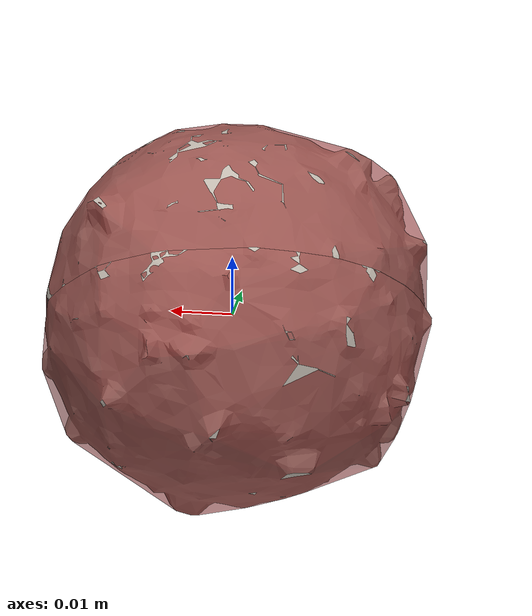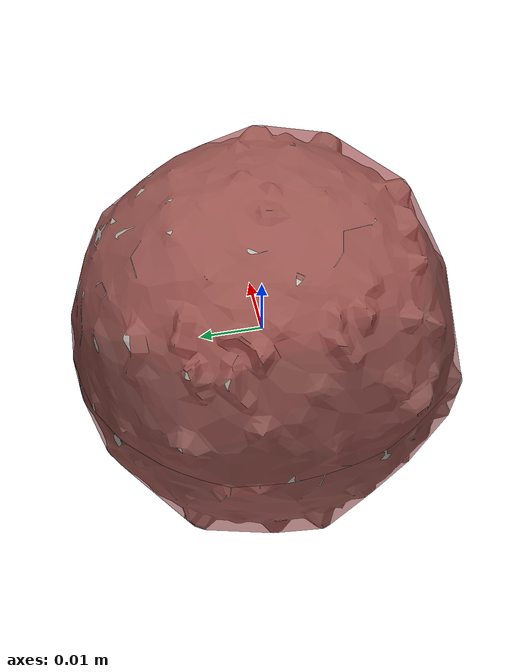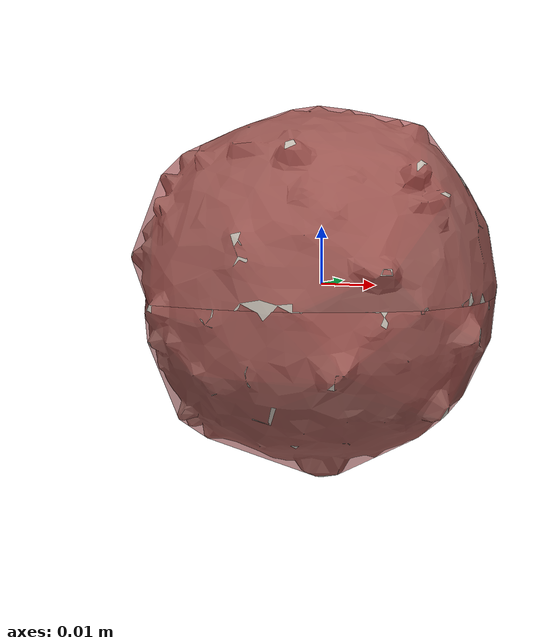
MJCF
<mujoco model="model">
  <compiler angle="radian"/>
  <asset>
    <mesh file="visual/CookieDoughBall001.obj" name="CookieDoughBall001_vis"/>
    <texture file="visual/T_BC001.png" name="CookieDoughBall001_material" type="2d"/>
    <material name="CookieDoughBall001_material" rgba="1 1 1 1.0" texture="CookieDoughBall001_material" shininess="0.02" specular="0.03"/>
    <mesh file="collision/collision_mesh_collision_0.obj" name="CookieDoughBall001_collision_mesh_0"/>
    <mesh file="collision/collision_mesh_collision_1.obj" name="CookieDoughBall001_collision_mesh_1"/>
  </asset>
  <default>
    <default class="visual">
      <geom conaffinity="0" contype="0" group="1" type="mesh"/>
    </default>
    <default class="collision">
      <geom group="0" rgba="0.5 0 0 0.5"/>
    </default>
    <default class="spawn">
      <geom group="0" rgba="1 1 1 0.5" contype="0" conaffinity="0"/>
      <site group="0" rgba="1 1 1 0.5"/>
    </default>
    <default class="region">
      <geom group="1" conaffinity="0" contype="0" rgba="0 1 0 0" mass="0"/>
    </default>
  </default>
  <worldbody>
    <body>
      <body name="object">
        <geom mesh="CookieDoughBall001_vis" type="mesh" solimp="0.998 0.998 0.001" solref="0.001 1" density="100" friction="0.95 0.3 0.1" class="visual" material="CookieDoughBall001_material"/>
        <geom class="region" name="reg_bbox" type="box" pos="0.0 0.0 0.0" size="0.0301015 0.0301985 0.030543"/>
        <geom mesh="CookieDoughBall001_collision_mesh_0" type="mesh" class="collision"/>
        <geom mesh="CookieDoughBall001_collision_mesh_1" type="mesh" class="collision"/>
      </body>
    </body>
  </worldbody>
  <actuator/>
  <custom>
    <text name="material_gt" data="dough"/>
  </custom>
</mujoco>
